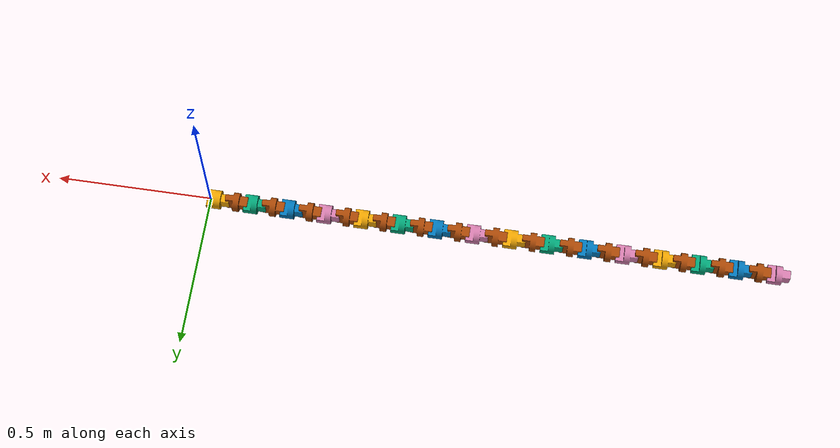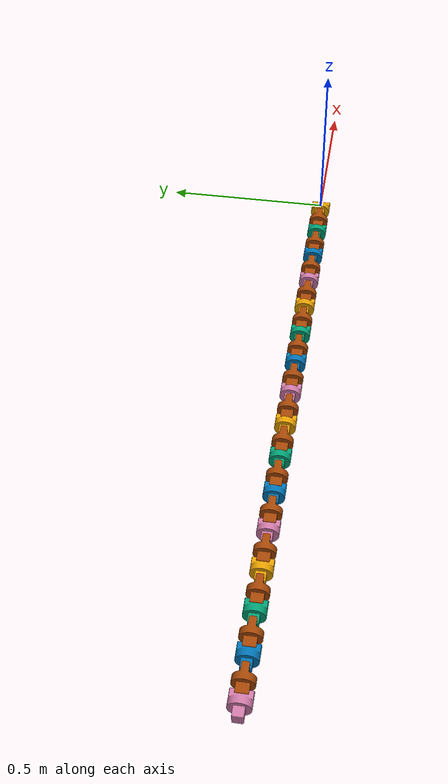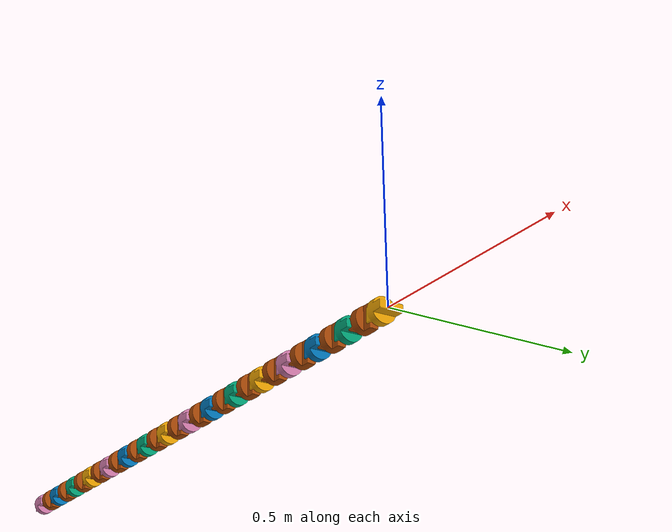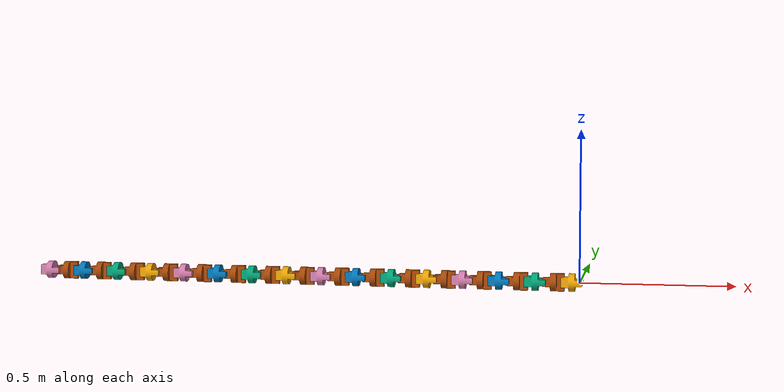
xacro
<?xml version="1.0"?>
<robot name="snake" xmlns:xacro="http://www.ros.org/wiki/xacro">

  <!-- constants -->
  <xacro:property name="pi" value="3.1415" />
  <xacro:property name="joint_num" value="29" />

  <xacro:property name="link_mass"   value="0.115" /> <!-- arbitrary value for link mass -->
  <xacro:property name="link_length" value="0.0601" /> <!-- Square dimensions of links -->
  <xacro:property name="link_radius" value="0.03" /> <!-- Square dimensions of links -->

  <xacro:arg name="joint_name" default="joint"/>
  <xacro:property name="joint_name" value="$(arg joint_name)" />
  <xacro:arg name="link_name" default="link"/>
  <xacro:property name="link_name" value="$(arg link_name)" />

  <!-- macros -->
  <xacro:macro name="snake_link" params="index isHead isMotorLink">
    <link name="${link_name}${index}">
      <visual>
        <geometry>
	  <xacro:if value="${isMotorLink}">
	    <mesh filename="package://snake_description/meshes/DAE/pitch.dae" />
	  </xacro:if>
	  <xacro:unless value="${isMotorLink}">
	    <mesh filename="package://snake_description/meshes/DAE/yaw.dae" />
	  </xacro:unless>
        </geometry>
      </visual>

      <!-- ====== for Gazebo ====== -->
      <collision>
        <geometry>
          <xacro:if value="${isMotorLink}">
            <mesh filename="package://snake_description/meshes/DAE/pitch.dae" />
	  </xacro:if>
	  <xacro:unless value="${isMotorLink}">
	    <mesh filename="package://snake_description/meshes/DAE/yaw.dae" />
	  </xacro:unless>
        </geometry>
      </collision>
      <inertial>
        <mass value="${link_mass}"/>
        <inertia ixx="1.0" ixy="0.0" ixz="0.0" iyy="1.0" iyz="0.0" izz="1.0"/>
      </inertial>

    </link>
  </xacro:macro>

  <!-- joint -->
  <xacro:macro name="snake_joint" params="index cl_index isPitch">
    <joint name="${joint_name}${index}" type="revolute">
      <parent link="${link_name}${index}"/>
      <child link="${link_name}${cl_index}"/>
      <origin xyz="${-link_length} 0 0"/>
      <xacro:if value="${isPitch}">
       <axis xyz="0 0 1"/>
      </xacro:if>
      <xacro:unless value="${isPitch}">
       <axis xyz="0 1 0"/>
      </xacro:unless>

      <!-- ====== for Gazebo  ======  -->
      <limit effort="30" lower="-1.3" upper="1.3" velocity="1.571"/>
      <dynamics damping="0.7"/>

    </joint>
  </xacro:macro>

<!-- body units -->

<xacro:snake_link index="0" isHead="ture" isMotorLink="true"/>

<xacro:snake_joint index="0" cl_index="1" isPitch="true"/>
<xacro:snake_link index="1" isHead="false" isMotorLink="false"/>

<xacro:snake_joint index="1" cl_index="2" isPitch="false"/>
<xacro:snake_link index="2" isHead="false" isMotorLink="true"/>

<xacro:snake_joint index="2" cl_index="3" isPitch="true"/>
<xacro:snake_link index="3" isHead="false" isMotorLink="false"/>

<xacro:snake_joint index="3" cl_index="4" isPitch="false"/>
<xacro:snake_link index="4" isHead="false" isMotorLink="true"/>

<xacro:snake_joint index="4" cl_index="5" isPitch="true"/>
<xacro:snake_link index="5" isHead="false" isMotorLink="false"/>

<xacro:snake_joint index="5" cl_index="6" isPitch="false"/>
<xacro:snake_link index="6" isHead="false" isMotorLink="true"/>

<xacro:snake_joint index="6" cl_index="7" isPitch="true"/>
<xacro:snake_link index="7" isHead="false" isMotorLink="false"/>

<xacro:snake_joint index="7" cl_index="8" isPitch="false"/>
<xacro:snake_link index="8" isHead="false" isMotorLink="true"/>

<xacro:snake_joint index="8" cl_index="9" isPitch="true"/>
<xacro:snake_link index="9" isHead="false" isMotorLink="false"/>

<xacro:snake_joint index="9" cl_index="10" isPitch="false"/>
<xacro:snake_link index="10" isHead="false" isMotorLink="true"/>

<xacro:snake_joint index="10" cl_index="11" isPitch="true"/>
<xacro:snake_link index="11" isHead="false" isMotorLink="false"/>

<xacro:snake_joint index="11" cl_index="12" isPitch="false"/>
<xacro:snake_link index="12" isHead="false" isMotorLink="true"/>

<xacro:snake_joint index="12" cl_index="13" isPitch="true"/>
<xacro:snake_link index="13" isHead="false" isMotorLink="false"/>

<xacro:snake_joint index="13" cl_index="14" isPitch="false"/>
<xacro:snake_link index="14" isHead="false" isMotorLink="true"/>

<xacro:snake_joint index="14" cl_index="15" isPitch="true"/>
<xacro:snake_link index="15" isHead="false" isMotorLink="false"/>

<xacro:snake_joint index="15" cl_index="16" isPitch="false"/>
<xacro:snake_link index="16" isHead="false" isMotorLink="true"/>

<xacro:snake_joint index="16" cl_index="17" isPitch="true"/>
<xacro:snake_link index="17" isHead="false" isMotorLink="false"/>

<xacro:snake_joint index="17" cl_index="18" isPitch="false"/>
<xacro:snake_link index="18" isHead="false" isMotorLink="true"/>

<xacro:snake_joint index="18" cl_index="19" isPitch="true"/>
<xacro:snake_link index="19" isHead="false" isMotorLink="false"/>

<xacro:snake_joint index="19" cl_index="20" isPitch="false"/>
<xacro:snake_link index="20" isHead="false" isMotorLink="true"/>

<xacro:snake_joint index="20" cl_index="21" isPitch="true"/>
<xacro:snake_link index="21" isHead="false" isMotorLink="false"/>

<xacro:snake_joint index="21" cl_index="22" isPitch="false"/>
<xacro:snake_link index="22" isHead="false" isMotorLink="true"/>

<xacro:snake_joint index="22" cl_index="23" isPitch="true"/>
<xacro:snake_link index="23" isHead="false" isMotorLink="false"/>

<xacro:snake_joint index="23" cl_index="24" isPitch="false"/>
<xacro:snake_link index="24" isHead="false" isMotorLink="true"/>

<xacro:snake_joint index="24" cl_index="25" isPitch="true"/>
<xacro:snake_link index="25" isHead="false" isMotorLink="false"/>

<xacro:snake_joint index="25" cl_index="26" isPitch="false"/>
<xacro:snake_link index="26" isHead="false" isMotorLink="true"/>

<xacro:snake_joint index="26" cl_index="27" isPitch="true"/>
<xacro:snake_link index="27" isHead="false" isMotorLink="false"/>

<xacro:snake_joint index="27" cl_index="28" isPitch="false"/>
<xacro:snake_link index="28" isHead="false" isMotorLink="true"/>

<xacro:snake_joint index="28" cl_index="29" isPitch="true"/>
<xacro:snake_link index="29" isHead="false" isMotorLink="false"/>

<xacro:snake_joint index="29" cl_index="30" isPitch="false"/>
<xacro:snake_link index="30" isHead="false" isMotorLink="true"/>

<!-- tail unit must be here -->
<xacro:include filename="$(find snake_description)/urdf/snake.gazebo.xacro"/>

</robot>
